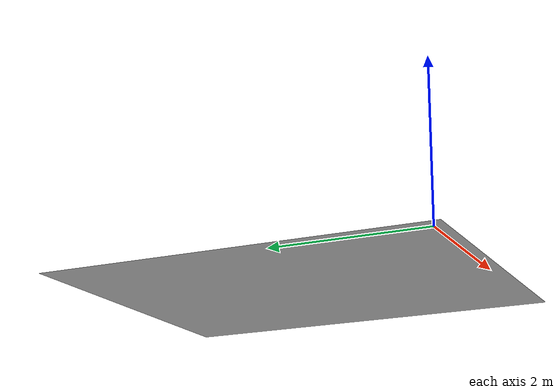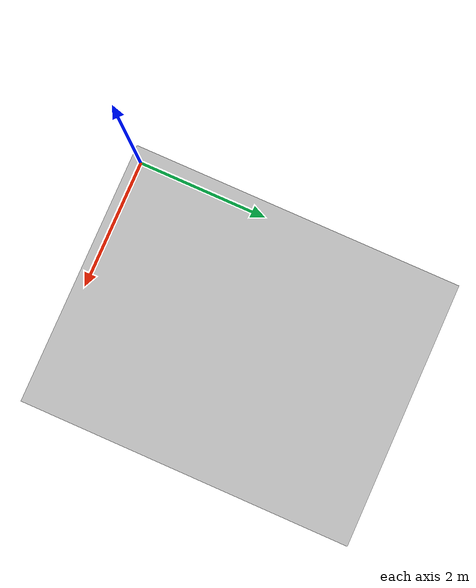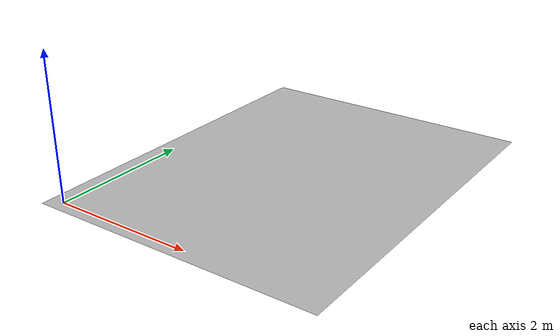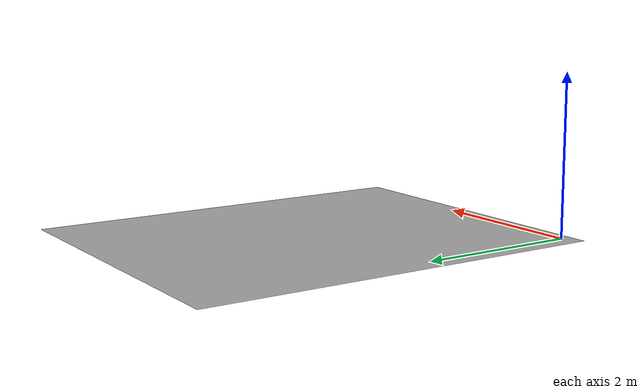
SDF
<?xml version="1.0"?>
<sdf version="1.4">
<model name="Bean">
<link name="fullLink">
<collision name="collision">
<pose>0 0 0 0 0 0</pose>
<geometry>
<mesh>
<uri>model://meshes/Bean/Bean_collision.dae</uri>
</mesh>
</geometry>
</collision>
<visual name="visual">
<pose>0 0 0 0 0 0</pose>
<geometry>
<mesh>
<uri>model://meshes/Bean/Bean.dae</uri>
</mesh>
</geometry>
</visual>
</link>
<static>1</static>
</model>
</sdf>
